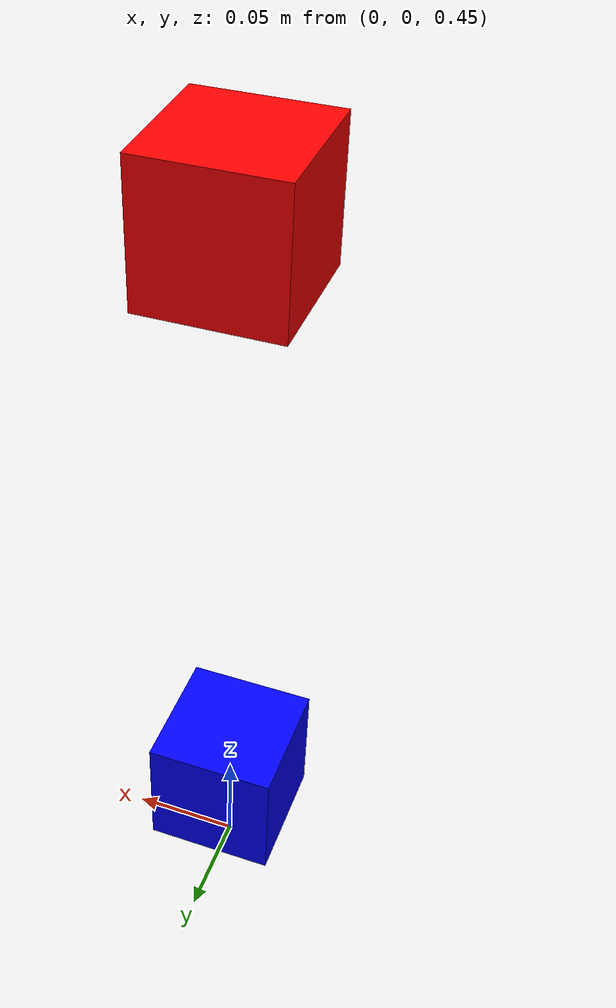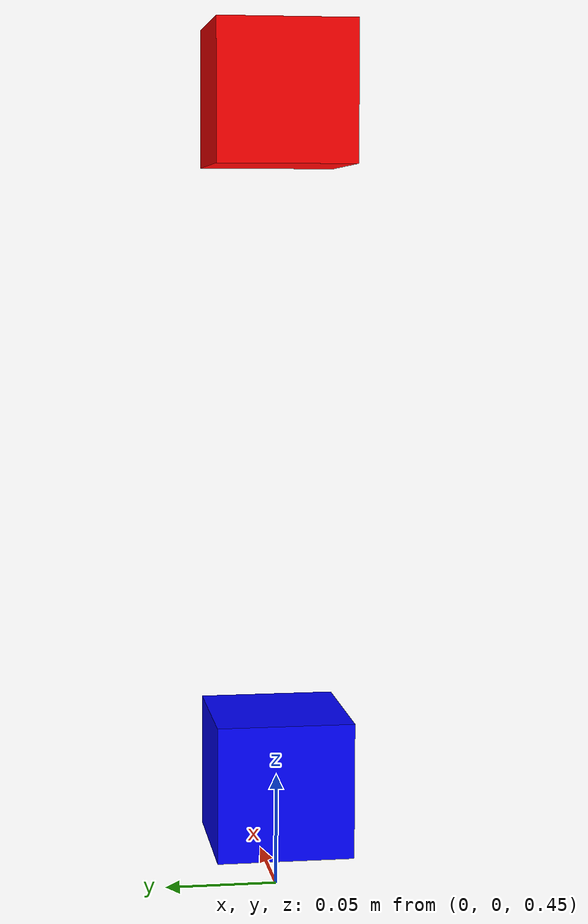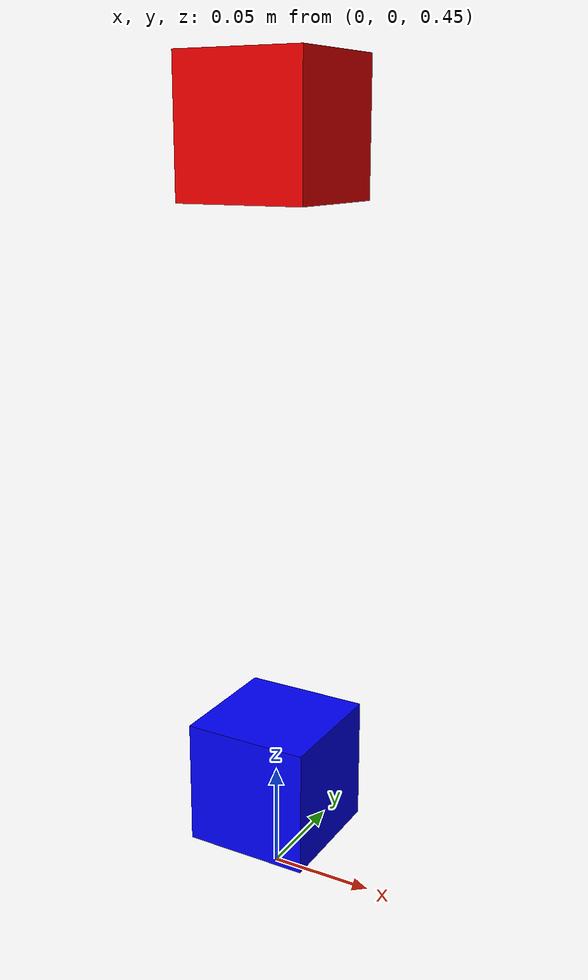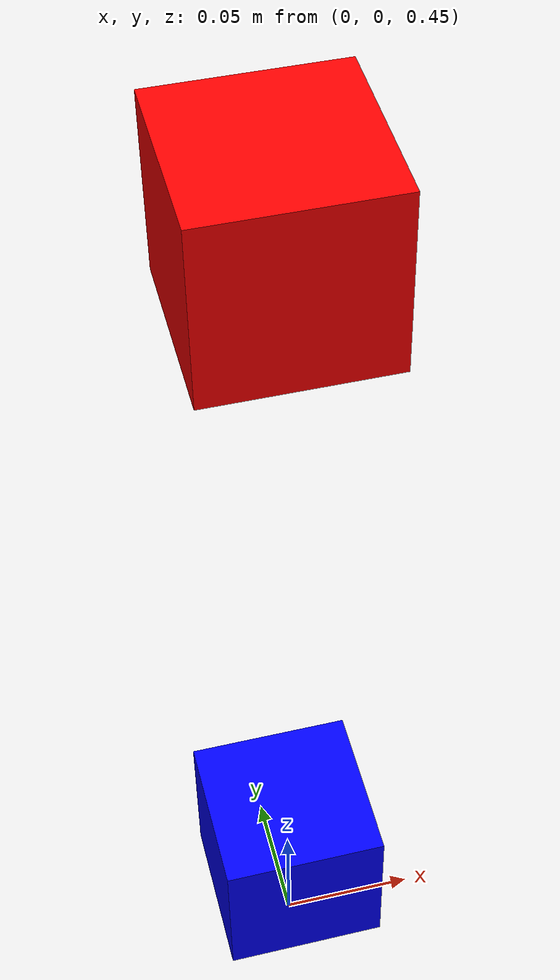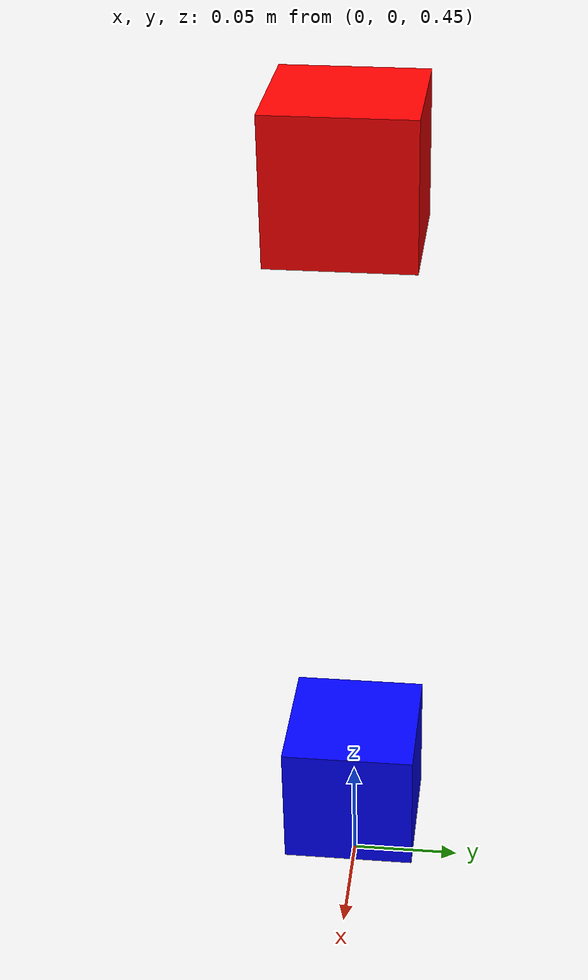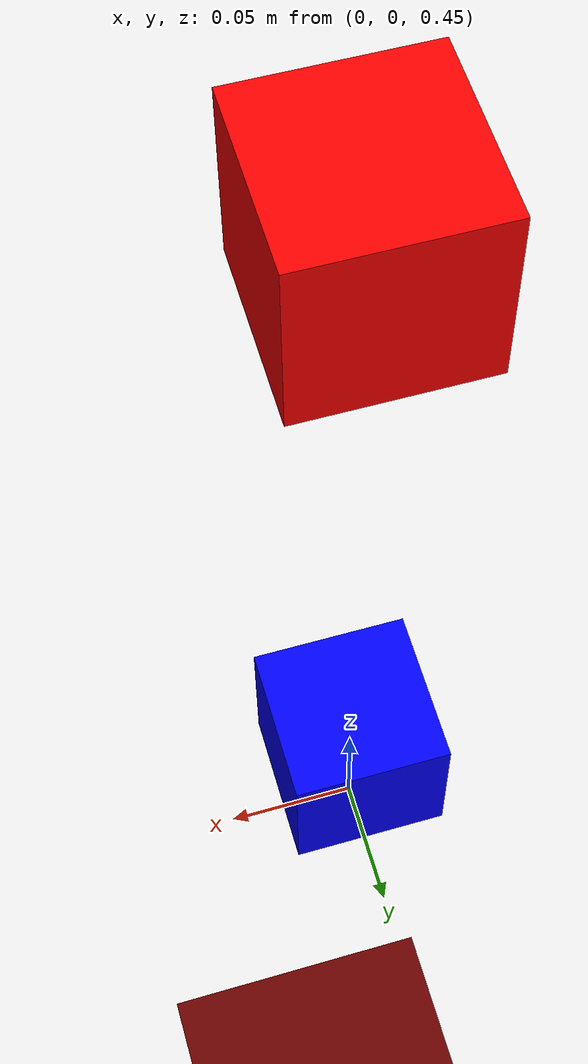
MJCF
<mujoco model="equality_test">
        <compiler angle="radian" meshdir=".." texturedir=".."/>
        <asset>
            <!-- Scene -©vk©-->
            <texture builtin="gradient" height="1536" rgb1="1 1 1" rgb2="1 1 1" type="skybox" width="256"/>

            <texture name="texfloor" type="2d" builtin="checker" width="512" height="512" rgb1="0.561 0.725 0.937"  rgb2="0.384 0.494 0.639"  mark="edge" markrgb="1 1 1" gridlayout="8" />
            <material name="matfloor" reflectance="0" texture="texfloor" texrepeat="1 1" texuniform="true" />
            <hfield name="terrain" size="7 7 1 0.001" nrow="100" ncol="100"/>
        </asset>

        <statistic extent="5" center="0 -1 1"/>

        <visual>
            <scale light=".05" framewidth=".005"/>
            <headlight ambient=".4 .4 .4" diffuse="0.50 0.50 0.50" specular="0.50 0.50 0.50"/>
            <global elevation="-15"/>
            <rgba actuator='0 0 1 1' actuatorpositive='1 0 0 1' actuatornegative='0.0 0.0 1.0 1'/>
        </visual>

        <!-- Add files to the world -©vk©-->
        <worldbody>
            <camera name="_" pos="-1.0 0.05 0.7" xyaxes="0 -1 0 0 0 1" mode="fixed"/>

            <body name="foot" pos="0 0 0.5" euler="0 0 0">
                <joint name="foot_joint" type="free"/>

                <geom name="test_geom" type="box" size="0.03 0.03 0.03" pos="0 0 0" mass="10.0" rgba="0 0 1 1"/>
            </body>

            <body name="weld_dst" pos="0 0 0.8" euler="0 0 0">
                <inertial diaginertia="0.01 0.01 0.01" mass="0.1" pos="0 0 0"/>

                <joint name="slide_x" type="slide" axis="1 0 0" limited="true" range="0 0.0001" solreflimit="0.001" margin="-0.0001" damping="100" stiffness="1000"/>
                <joint name="slide_y" type="slide" axis="0 1 0" limited="true" range="0 0.0001" solreflimit="0.001" margin="-0.0001" damping="100" stiffness="1000"/>
                <joint name="slide_z" type="slide" axis="0 0 1" limited="true" range="0 0.0001" solreflimit="0.001" margin="-0.0001" damping="100" stiffness="1000"/>
                <joint name="ball" type="ball"/>

                <geom name="weld_dst_geom" type="box" size="0.03 0.03 0.03" pos="0 0 0"  rgba="1 0 0 1" contype="0" conaffinity="0"/>
            </body>

            <geom name="floor" type="plane" size="1 1 1" pos="0 0 0.0" group="1" rgba="0.4 0 0 1"/>
        </worldbody>

        <equality>
            <weld name="weld_dst_foot" body1="weld_dst" body2="foot" anchor="0.0 0 0" solref="0.001 1" solimp="0.001 0.999 0.001" relpose="0 0 0 1 0 0 0"/>
        </equality>

        <sensor>
            <jointlimitfrc name="slide_x_limitfrc" joint="slide_x"/>
            <jointlimitfrc name="slide_y_limitfrc" joint="slide_y"/>
            <jointlimitfrc name="slide_z_limitfrc" joint="slide_z"/>
        </sensor>

    </mujoco>
